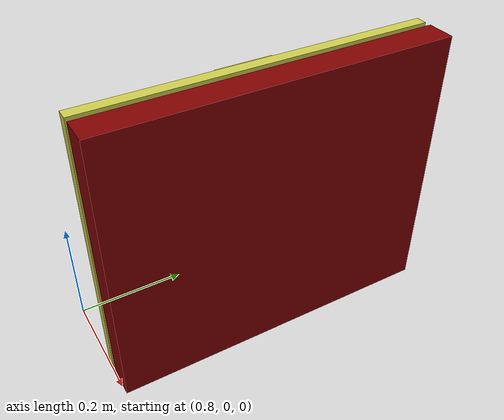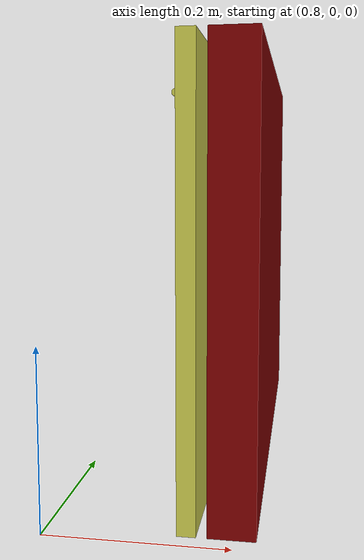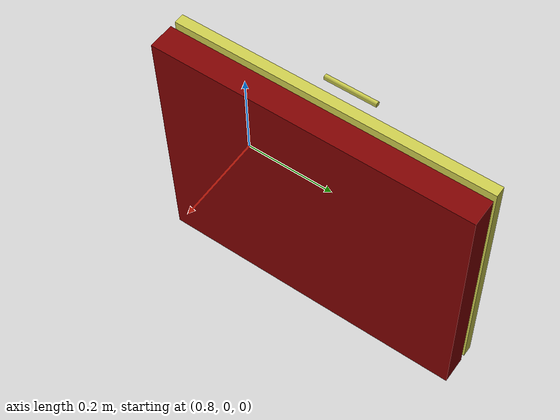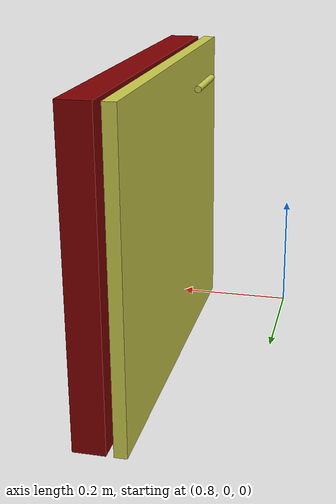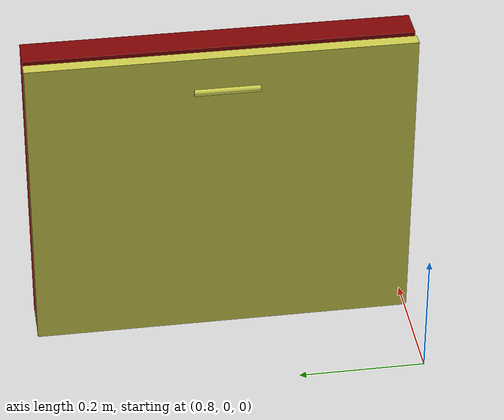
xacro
<?xml version="1.0" ?>
<robot name="drawer"  xmlns:xacro="http://www.ros.org/wiki/xacro" >
    <xacro:arg name="height" default="0.0"/>
    <xacro:arg name="prefix" default=""/>
    <xacro:arg name="origin_x" default="1.0"/>
    <xacro:arg name="articulation_mismatch_offset" default="0.0"/>

    <xacro:property name="origin_x" default="$(arg origin_x)"/>
    <xacro:property name="prefix" default="$(arg prefix)"/>
    <xacro:property name="articulation_mismatch_offset" default="$(arg articulation_mismatch_offset)"/>

    <xacro:property name="height" default="$(arg height)"/>

    <link name="world"/>
    <joint name="fixed" type="fixed">
        <parent link="world"/>
        <child link="${prefix}drawer_frame"/>
        <origin xyz="${origin_x} 0.3 ${height + 0.01}" rpy="0 0 3.14"/>
    </joint>

    <link name="${prefix}drawer_frame">
        <visual>
            <origin rpy="0 0 0" xyz="0 0 0.25"/>
            <geometry>
                <box size="0.05 0.6 0.5"/>
            </geometry>
            <material name="frame_material">
                <color rgba="0.5 0.0 0.0 1"/>
            </material>
        </visual>
        <collision>
            <origin rpy="0 0 0" xyz="0 0 0.25"/>
            <geometry>
                <box size="0.05 0.6 0.5"/>
            </geometry>
        </collision>
    </link>

    <link name="${prefix}drawer_link">
        <inertial>
            <origin rpy="0 0 0" xyz="0 0 0.25"/>
            <mass value="1.0"/>
            <inertia ixx="0.048966669" ixy="0" ixz="0" iyy="0.046466667" iyz="0" izz="0.0041666669"/>
        </inertial>
        <visual>
            <origin rpy="0 0 0" xyz="0 0 0.25"/>
            <geometry>
                <box size="0.02 0.6 0.5"/>
            </geometry>
            <material name="drawer_material">
                <color rgba="0.8 0.8 0.3 1"/>
            </material>
        </visual>
        <collision>
            <origin rpy="0 0 0" xyz="0 0 0.25"/>
            <geometry>
                <box size="0.02 0.6 0.5"/>
            </geometry>
        </collision>
    </link>

    <joint name="articulation_joint" type="prismatic">
        <parent link="${prefix}drawer_frame"/>
        <child link="${prefix}drawer_link"/>
        <dynamics damping="2.0" friction="4.0"/>
        <origin xyz="0.046 0 0"/>
        <axis xyz="1 0 0"/>
        <limit effort="100" lower="0" upper="0.55" velocity="10.0"/>
    </joint>

    <link name="${prefix}handle_link">
        <inertial>
            <origin rpy="0 0 0" xyz="0 0 0"/>
            <mass value="0.1"/>
            <inertia ixx="0.001" ixy="0" ixz="0" iyy="0.001" iyz="0" izz="0.001"/>
        </inertial>
        <visual>
            <origin rpy="0 0 0" xyz="0 0 0"/>
            <geometry>
                <cylinder radius="0.005" length="0.10"/>
            </geometry>
            <material name="handle_matreial">
                <color rgba="0.8 0.8 0.3 1"/>
            </material>
        </visual>
        <collision>
            <origin rpy="0 0 0" xyz="0 0 0"/>
            <geometry>
                <cylinder radius="0.005" length="0.10"/>
            </geometry>
            <material name="">
                <contact name="steel"/>
            </material>
        </collision>
    </link>

    <joint name="${prefix}handle_joint" type="fixed">
        <parent link="${prefix}drawer_link"/>
        <child link="${prefix}handle_link"/>
        <origin xyz="0.055 0 0.47" rpy="1.5708 0 0"/>
        <dynamics damping="1.0" friction="2.0"/>
        <axis xyz="0 1 0"/>
    </joint>
</robot>
